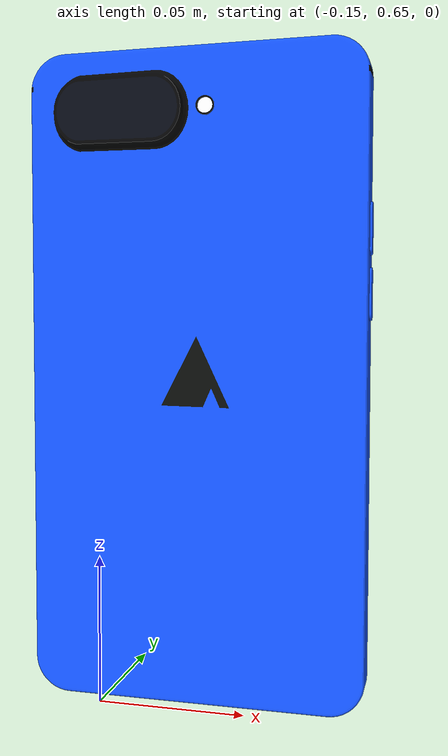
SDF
<?xml version="1.0" ?>
<sdf version="1.7">
  <model name="new_mobile_phone">
    <static>true</static>

    <link name="link">
      <visual name="visual">
        <geometry>
          <mesh>
            <uri>model://brand_new_mobile_phone/new_mobile_phone.dae</uri>
            <scale>0.08 0.08 0.08</scale>
          </mesh>
        </geometry>
      </visual>

      <collision name="collision">
        <geometry>
          <mesh>
            <uri>model://brand_new_mobile_phone/new_mobile_phone.dae</uri>
          </mesh>
        </geometry>
      </collision>
    </link>
  </model>
</sdf>
